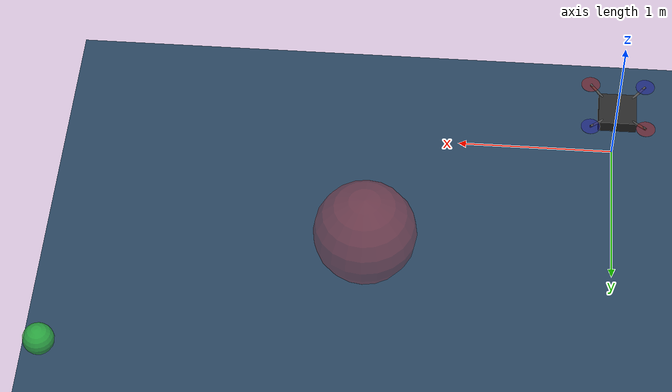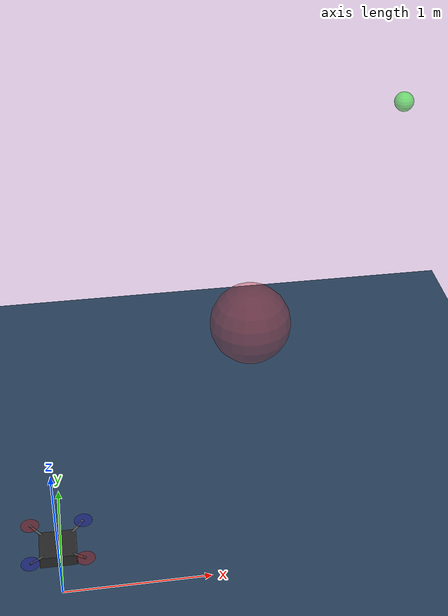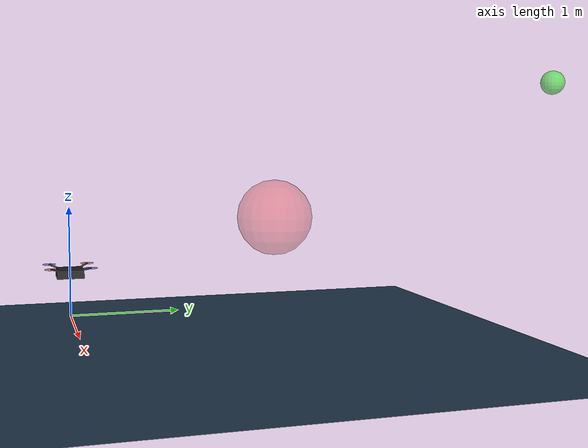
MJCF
<mujoco model="holybro_x500">
  <compiler angle="radian"/>
  <option timestep="0.002" gravity="0 0 -9.81" integrator="RK4"/>

  <asset>
    <texture type="skybox" builtin="gradient" rgb1="0.3 0.5 0.7" rgb2="0 0 0" width="512" height="3072"/>
    <texture type="2d" name="groundplane" builtin="checker" mark="edge" rgb1="0.2 0.3 0.4" rgb2="0.1 0.2 0.3"
      markrgb="0.8 0.8 0.8" width="300" height="300"/>
    <material name="groundplane" texture="groundplane" texuniform="true" texrepeat="5 5" reflectance="0.2"/>
  </asset>

  <worldbody>
    <light pos="0 0 3" dir="0 0 -1" directional="true"/>
    <geom name="floor" size="0 0 0.05" type="plane" material="groundplane"/>

    <body name="x500" pos="0 0 0.4">
      <freejoint name="root"/>
      <!-- base_link: mass and diag inertia exactly as in the SDF -->
      <inertial pos="0 0 0" mass="2.0" diaginertia="0.02166666666666667 0.02166666666666667 0.04000000000000001"/>
      <geom name="body_box" type="box" size="0.12 0.12 0.04" rgba="0.15 0.15 0.15 1"/>
      <geom name="arm0" type="cylinder" fromto="0 0 0  0.174 -0.174 0.06" size="0.008" rgba="0.3 0.3 0.3 1"/>
      <geom name="arm1" type="cylinder" fromto="0 0 0 -0.174  0.174 0.06" size="0.008" rgba="0.3 0.3 0.3 1"/>
      <geom name="arm2" type="cylinder" fromto="0 0 0  0.174  0.174 0.06" size="0.008" rgba="0.3 0.3 0.3 1"/>
      <geom name="arm3" type="cylinder" fromto="0 0 0 -0.174 -0.174 0.06" size="0.008" rgba="0.3 0.3 0.3 1"/>

      <body name="rotor0" pos="0.174 -0.174 0.06">
        <inertial pos="0 0 0" mass="0.016076923076923075" diaginertia="3.8464910483993325e-07 2.6115851691700804e-05 2.649858234714004e-05"/>
        <geom name="rotor0_geom" type="cylinder" size="0.06 0.002" rgba="0.6 0.1 0.1 0.5" contype="0" conaffinity="0"/>
      </body>
      <body name="rotor1" pos="-0.174 0.174 0.06">
        <inertial pos="0 0 0" mass="0.016076923076923075" diaginertia="3.8464910483993325e-07 2.6115851691700804e-05 2.649858234714004e-05"/>
        <geom name="rotor1_geom" type="cylinder" size="0.06 0.002" rgba="0.6 0.1 0.1 0.5" contype="0" conaffinity="0"/>
      </body>
      <body name="rotor2" pos="0.174 0.174 0.06">
        <inertial pos="0 0 0" mass="0.016076923076923075" diaginertia="3.8464910483993325e-07 2.6115851691700804e-05 2.649858234714004e-05"/>
        <geom name="rotor2_geom" type="cylinder" size="0.06 0.002" rgba="0.1 0.1 0.6 0.5" contype="0" conaffinity="0"/>
      </body>
      <body name="rotor3" pos="-0.174 -0.174 0.06">
        <inertial pos="0 0 0" mass="0.016076923076923075" diaginertia="3.8464910483993325e-07 2.6115851691700804e-05 2.649858234714004e-05"/>
        <geom name="rotor3_geom" type="cylinder" size="0.06 0.002" rgba="0.1 0.1 0.6 0.5" contype="0" conaffinity="0"/>
      </body>
    </body>

    <body name="obstacle0" mocap="true" pos="1.5 1.5 1.0">
      <geom type="sphere" size="0.3" rgba="0.9 0.2 0.2 0.35" contype="0" conaffinity="0"/>
    </body>
    <body name="target_marker" mocap="true" pos="3.0 3.0 2.0">
      <geom type="sphere" size="0.08" rgba="0.2 0.9 0.2 0.6" contype="0" conaffinity="0"/>
    </body>
  </worldbody>
</mujoco>
